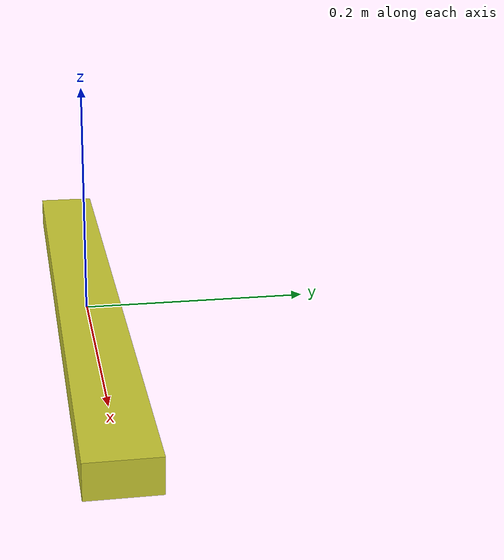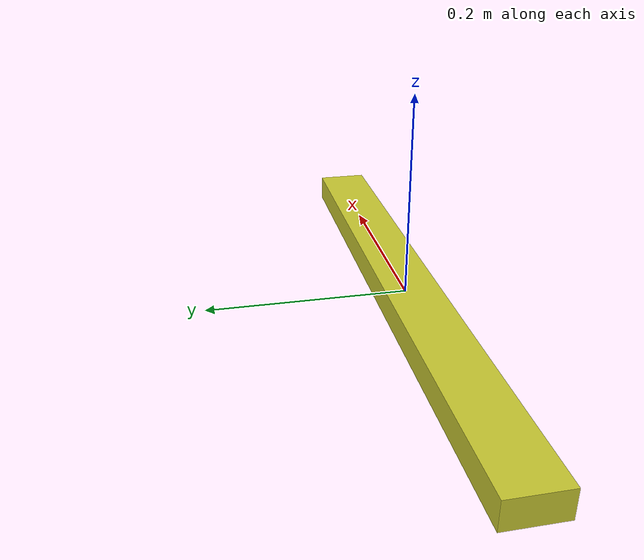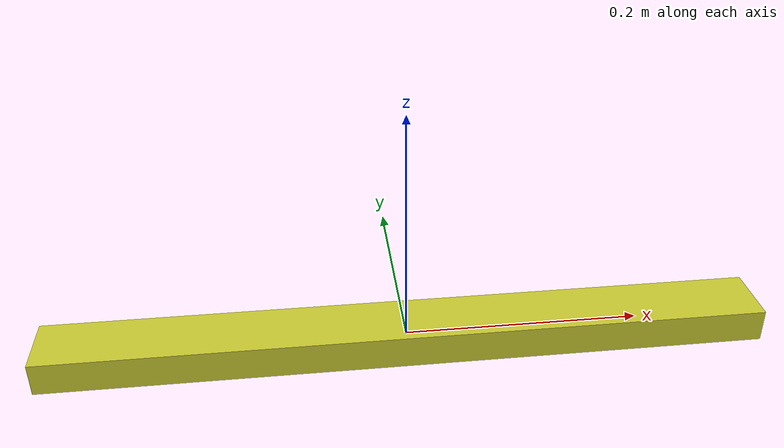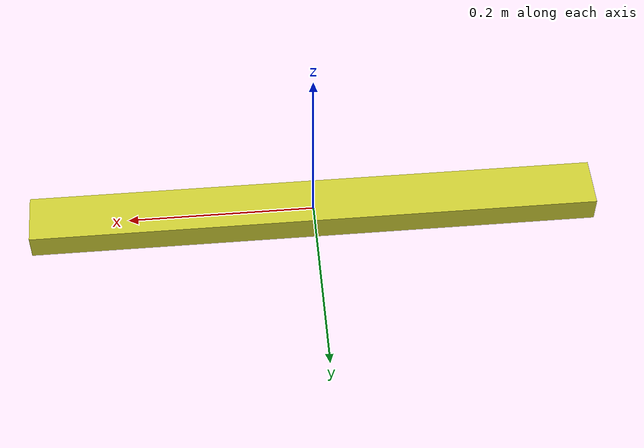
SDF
<sdf version="1.6">
    <model name="level">
        <allow_auto_disable>true</allow_auto_disable>
        <link name="link">
            <kinematic>true</kinematic>
            <inertial>
                <inertia>
                    <ixx>0.00155</ixx>
                    <ixy>0</ixy>
                    <ixz>0</ixz>
                    <iyy>0.0094</iyy>
                    <iyz>0</iyz>
                    <izz>0.01055</izz>
                </inertia>
                <mass>0.5</mass>
            </inertial>
            <visual name="visual">
                <geometry>
                    <box>
                        <size>0.61 0.055 0.028</size>
                    </box>
                </geometry>
                <material>
                <ambient>0.8 0.8 0.2 1.0</ambient>
                <diffuse>0.8 0.8 0.2 1.0</diffuse>
                </material>
            </visual>
            <collision name="collision">
                <geometry>
                    <box>
                        <size>0.61 0.055 0.028</size>
                    </box>
                </geometry>
                <surface>
                    <friction>
                        <ode>
                            <mu>1.0</mu>
                            <mu2>1.0</mu2>
                        </ode>
                    </friction>
                    <contact>
                        <ode>
                            <kp>1e15</kp>
                            <kd>1e12</kd>
                        </ode>
                    </contact>
                </surface>
            </collision>
        </link>
    </model>
</sdf>
